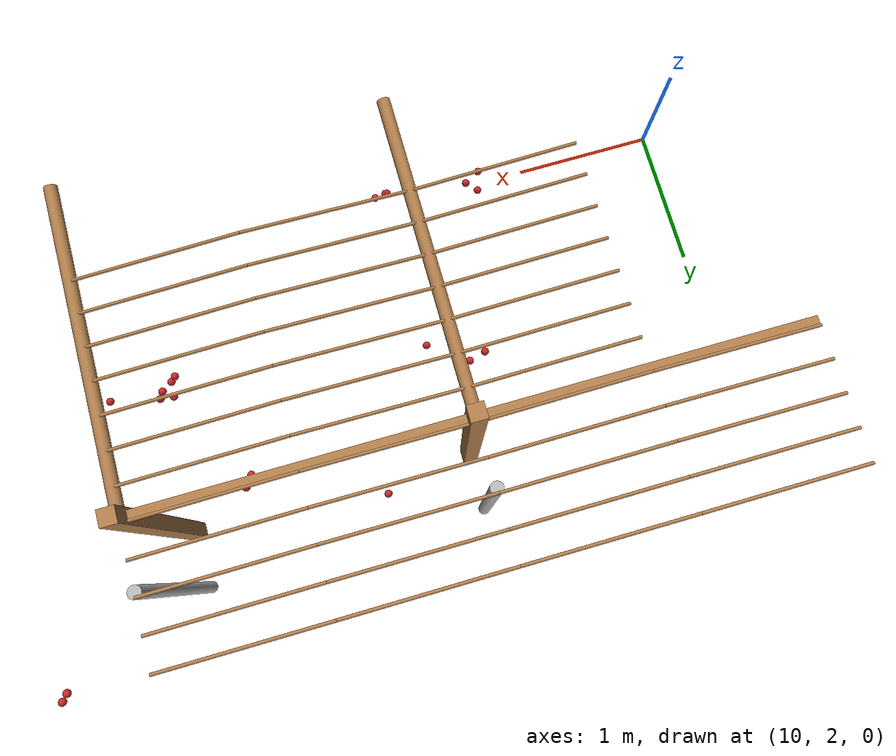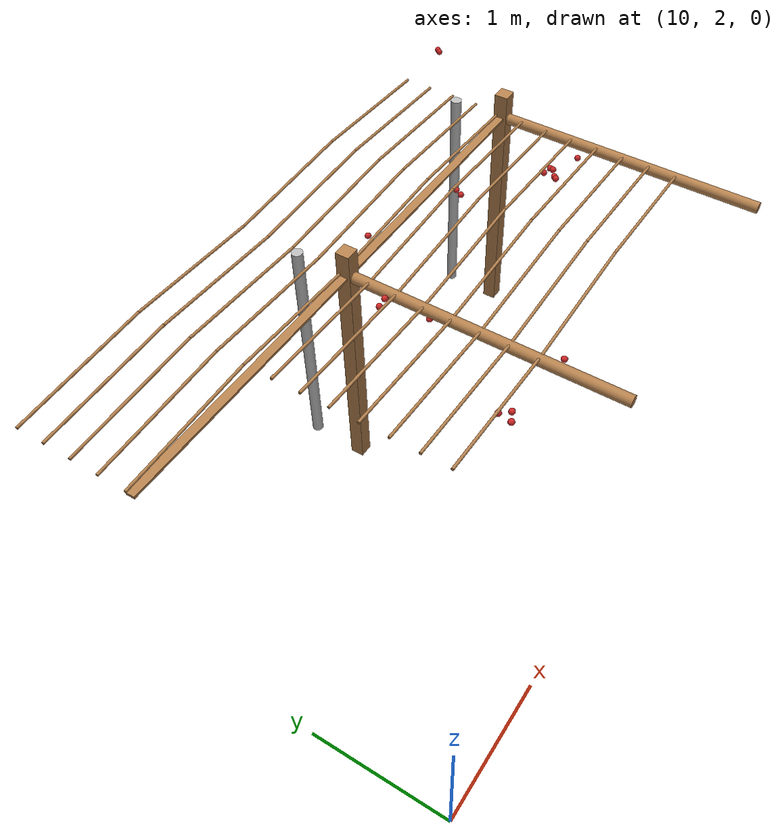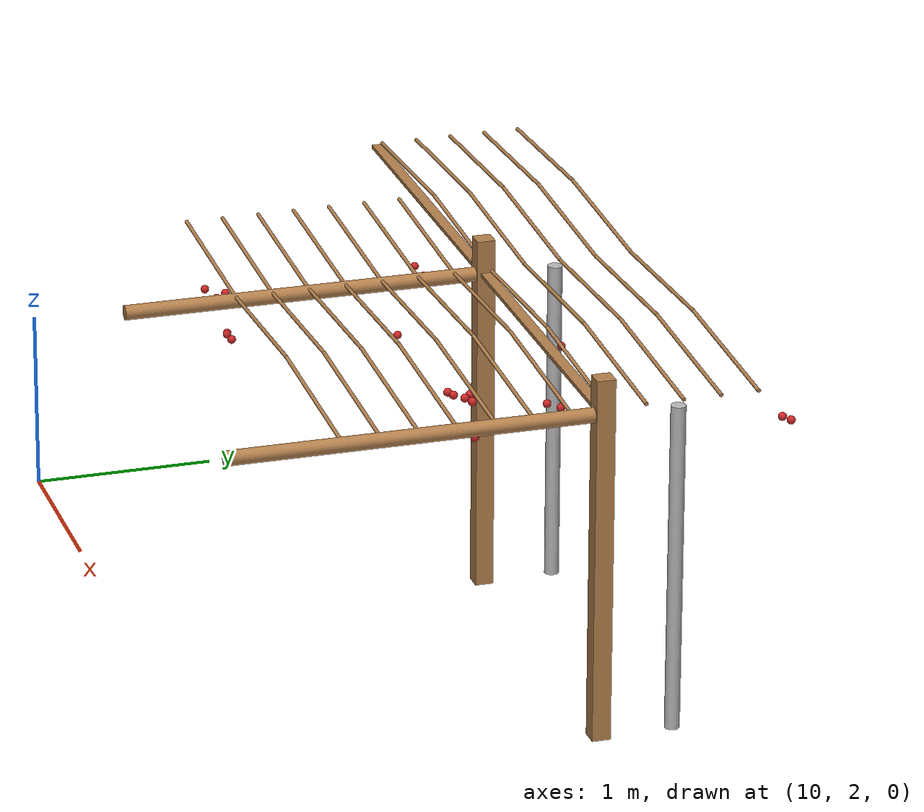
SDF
<sdf version="1.4">
 <model name="pergola">
  <include><name>post_68</name><pose>12.0 4.0 0 0 0 0</pose><uri>model://post</uri></include>
  <include><name>post_79</name><pose>14.0 4.0 0 0 0 0</pose><uri>model://post</uri></include>
  <link name="beam_57">
   <pose>11.0 4.0 1.81 0 0 0</pose>
   <collision name="collision"><geometry><box><size>2.0 0.06 0.02</size></box></geometry></collision>
   <visual name="visual">
    <geometry><box><size>2.0 0.06 0.02</size></box></geometry>
    <material><script><name>Gazebo/Wood</name></script></material>
   </visual>
   <inertial>
    <mass>5</mass>
    <inertia>
     <ixx>0.0016666666666666668</ixx>
     <ixy>0.0</ixy>
     <ixz>0.0</ixz>
     <iyy>1.6681666666666664</iyy>
     <iyz>0.0</iyz>
     <izz>1.6668333333333332</izz>
    </inertia>
   </inertial>
  </link>
  <link name="beam_68">
   <pose>13.0 4.0 1.81 0 0 0</pose>
   <collision name="collision"><geometry><box><size>2.0 0.06 0.02</size></box></geometry></collision>
   <visual name="visual">
    <geometry><box><size>2.0 0.06 0.02</size></box></geometry>
    <material><script><name>Gazebo/Wood</name></script></material>
   </visual>
   <inertial>
    <mass>5</mass>
    <inertia>
     <ixx>0.0016666666666666668</ixx>
     <ixy>0.0</ixy>
     <ixz>0.0</ixz>
     <iyy>1.6681666666666664</iyy>
     <iyz>0.0</iyz>
     <izz>1.6668333333333332</izz>
    </inertia>
   </inertial>
  </link>
  <include><name>tree_62</name><pose>12.0 4.4 0 0 0 0</pose><uri>model://tree_trunk</uri></include>
  <include><name>tree_72</name><pose>14.0 4.4 0 0 0 0</pose><uri>model://tree_trunk</uri></include>
  <link name="baseBranch_61">
   <pose>12.0 3.0 1.8 1.5707963267948966 0 0</pose>
   <collision name="collision">
    <geometry><cylinder><radius>0.04</radius><length>1.94</length></cylinder></geometry>
   </collision>
   <visual name="visual">
    <geometry><cylinder><radius>0.04</radius><length>1.94</length></cylinder></geometry>
    <material><script><name>Gazebo/WoodFloor</name></script></material>
   </visual>
   <inertial>
    <mass>10</mass>
    <inertia>
     <ixx>3.140333333333333</ixx>
     <ixy>0.0</ixy>
     <ixz>0.0</ixz>
     <iyy>3.140333333333333</iyy>
     <iyz>0.0</iyz>
     <izz>0.008</izz>
    </inertia>
   </inertial>
  </link>
  <link name="baseBranch_71">
   <pose>14.0 3.0 1.8 1.5707963267948966 0 0</pose>
   <collision name="collision">
    <geometry><cylinder><radius>0.04</radius><length>1.94</length></cylinder></geometry>
   </collision>
   <visual name="visual">
    <geometry><cylinder><radius>0.04</radius><length>1.94</length></cylinder></geometry>
    <material><script><name>Gazebo/WoodFloor</name></script></material>
   </visual>
   <inertial>
    <mass>10</mass>
    <inertia>
     <ixx>3.140333333333333</ixx>
     <ixy>0.0</ixy>
     <ixz>0.0</ixz>
     <iyy>3.140333333333333</iyy>
     <iyz>0.0</iyz>
     <izz>0.008</izz>
    </inertia>
   </inertial>
  </link>
  <link name="vine_1027">
   <pose>11.5 2.63 1.85 0 -1.5208379310729538 0</pose>
   <collision name="collision">
    <geometry><cylinder><radius>0.01</radius><length>1.0012492197250393</length></cylinder></geometry>
   </collision>
   <visual name="visual">
    <geometry><cylinder><radius>0.01</radius><length>1.0012492197250393</length></cylinder></geometry>
    <material><script><name>Gazebo/WoodFloor</name></script></material>
   </visual>
   <inertial>
    <mass>5</mass>
    <inertia>
     <ixx>0.41783333333333345</ixx>
     <ixy>0.0</ixy>
     <ixz>0.0</ixz>
     <iyy>0.41783333333333345</iyy>
     <iyz>0.0</iyz>
     <izz>0.00025</izz>
    </inertia>
   </inertial>
  </link>
  <link name="vine_1029">
   <pose>11.5 2.83 1.85 0 -1.5208379310729538 0</pose>
   <collision name="collision">
    <geometry><cylinder><radius>0.01</radius><length>1.0012492197250393</length></cylinder></geometry>
   </collision>
   <visual name="visual">
    <geometry><cylinder><radius>0.01</radius><length>1.0012492197250393</length></cylinder></geometry>
    <material><script><name>Gazebo/WoodFloor</name></script></material>
   </visual>
   <inertial>
    <mass>5</mass>
    <inertia>
     <ixx>0.41783333333333345</ixx>
     <ixy>0.0</ixy>
     <ixz>0.0</ixz>
     <iyy>0.41783333333333345</iyy>
     <iyz>0.0</iyz>
     <izz>0.00025</izz>
    </inertia>
   </inertial>
  </link>
  <link name="vine_1031">
   <pose>11.5 3.03 1.85 0 -1.5208379310729538 0</pose>
   <collision name="collision">
    <geometry><cylinder><radius>0.01</radius><length>1.0012492197250393</length></cylinder></geometry>
   </collision>
   <visual name="visual">
    <geometry><cylinder><radius>0.01</radius><length>1.0012492197250393</length></cylinder></geometry>
    <material><script><name>Gazebo/WoodFloor</name></script></material>
   </visual>
   <inertial>
    <mass>5</mass>
    <inertia>
     <ixx>0.41783333333333345</ixx>
     <ixy>0.0</ixy>
     <ixz>0.0</ixz>
     <iyy>0.41783333333333345</iyy>
     <iyz>0.0</iyz>
     <izz>0.00025</izz>
    </inertia>
   </inertial>
  </link>
  <link name="vine_1033">
   <pose>11.5 3.23 1.85 0 -1.5208379310729538 0</pose>
   <collision name="collision">
    <geometry><cylinder><radius>0.01</radius><length>1.0012492197250393</length></cylinder></geometry>
   </collision>
   <visual name="visual">
    <geometry><cylinder><radius>0.01</radius><length>1.0012492197250393</length></cylinder></geometry>
    <material><script><name>Gazebo/WoodFloor</name></script></material>
   </visual>
   <inertial>
    <mass>5</mass>
    <inertia>
     <ixx>0.41783333333333345</ixx>
     <ixy>0.0</ixy>
     <ixz>0.0</ixz>
     <iyy>0.41783333333333345</iyy>
     <iyz>0.0</iyz>
     <izz>0.00025</izz>
    </inertia>
   </inertial>
  </link>
  <link name="vine_1035">
   <pose>11.5 3.43 1.85 0 -1.5208379310729538 0</pose>
   <collision name="collision">
    <geometry><cylinder><radius>0.01</radius><length>1.0012492197250393</length></cylinder></geometry>
   </collision>
   <visual name="visual">
    <geometry><cylinder><radius>0.01</radius><length>1.0012492197250393</length></cylinder></geometry>
    <material><script><name>Gazebo/WoodFloor</name></script></material>
   </visual>
   <inertial>
    <mass>5</mass>
    <inertia>
     <ixx>0.41783333333333345</ixx>
     <ixy>0.0</ixy>
     <ixz>0.0</ixz>
     <iyy>0.41783333333333345</iyy>
     <iyz>0.0</iyz>
     <izz>0.00025</izz>
    </inertia>
   </inertial>
  </link>
  <link name="vine_1037">
   <pose>11.5 3.63 1.85 0 -1.5208379310729538 0</pose>
   <collision name="collision">
    <geometry><cylinder><radius>0.01</radius><length>1.0012492197250393</length></cylinder></geometry>
   </collision>
   <visual name="visual">
    <geometry><cylinder><radius>0.01</radius><length>1.0012492197250393</length></cylinder></geometry>
    <material><script><name>Gazebo/WoodFloor</name></script></material>
   </visual>
   <inertial>
    <mass>5</mass>
    <inertia>
     <ixx>0.41783333333333345</ixx>
     <ixy>0.0</ixy>
     <ixz>0.0</ixz>
     <iyy>0.41783333333333345</iyy>
     <iyz>0.0</iyz>
     <izz>0.00025</izz>
    </inertia>
   </inertial>
  </link>
  <link name="vine_1039">
   <pose>11.5 3.83 1.85 0 -1.5208379310729538 0</pose>
   <collision name="collision">
    <geometry><cylinder><radius>0.01</radius><length>1.0012492197250393</length></cylinder></geometry>
   </collision>
   <visual name="visual">
    <geometry><cylinder><radius>0.01</radius><length>1.0012492197250393</length></cylinder></geometry>
    <material><script><name>Gazebo/WoodFloor</name></script></material>
   </visual>
   <inertial>
    <mass>5</mass>
    <inertia>
     <ixx>0.41783333333333345</ixx>
     <ixy>0.0</ixy>
     <ixz>0.0</ixz>
     <iyy>0.41783333333333345</iyy>
     <iyz>0.0</iyz>
     <izz>0.00025</izz>
    </inertia>
   </inertial>
  </link>
  <link name="vine_1040">
   <pose>10.5 4.03 1.85 0 1.5208379310729538 0</pose>
   <collision name="collision">
    <geometry><cylinder><radius>0.01</radius><length>1.0012492197250393</length></cylinder></geometry>
   </collision>
   <visual name="visual">
    <geometry><cylinder><radius>0.01</radius><length>1.0012492197250393</length></cylinder></geometry>
    <material><script><name>Gazebo/WoodFloor</name></script></material>
   </visual>
   <inertial>
    <mass>5</mass>
    <inertia>
     <ixx>0.41783333333333345</ixx>
     <ixy>0.0</ixy>
     <ixz>0.0</ixz>
     <iyy>0.41783333333333345</iyy>
     <iyz>0.0</iyz>
     <izz>0.00025</izz>
    </inertia>
   </inertial>
  </link>
  <link name="vine_1041">
   <pose>11.5 4.03 1.85 0 -1.5208379310729538 0</pose>
   <collision name="collision">
    <geometry><cylinder><radius>0.01</radius><length>1.0012492197250393</length></cylinder></geometry>
   </collision>
   <visual name="visual">
    <geometry><cylinder><radius>0.01</radius><length>1.0012492197250393</length></cylinder></geometry>
    <material><script><name>Gazebo/WoodFloor</name></script></material>
   </visual>
   <inertial>
    <mass>5</mass>
    <inertia>
     <ixx>0.41783333333333345</ixx>
     <ixy>0.0</ixy>
     <ixz>0.0</ixz>
     <iyy>0.41783333333333345</iyy>
     <iyz>0.0</iyz>
     <izz>0.00025</izz>
    </inertia>
   </inertial>
  </link>
  <link name="vine_1042">
   <pose>10.5 4.23 1.85 0 1.5208379310729538 0</pose>
   <collision name="collision">
    <geometry><cylinder><radius>0.01</radius><length>1.0012492197250393</length></cylinder></geometry>
   </collision>
   <visual name="visual">
    <geometry><cylinder><radius>0.01</radius><length>1.0012492197250393</length></cylinder></geometry>
    <material><script><name>Gazebo/WoodFloor</name></script></material>
   </visual>
   <inertial>
    <mass>5</mass>
    <inertia>
     <ixx>0.41783333333333345</ixx>
     <ixy>0.0</ixy>
     <ixz>0.0</ixz>
     <iyy>0.41783333333333345</iyy>
     <iyz>0.0</iyz>
     <izz>0.00025</izz>
    </inertia>
   </inertial>
  </link>
  <link name="vine_1043">
   <pose>11.5 4.23 1.85 0 -1.5208379310729538 0</pose>
   <collision name="collision">
    <geometry><cylinder><radius>0.01</radius><length>1.0012492197250393</length></cylinder></geometry>
   </collision>
   <visual name="visual">
    <geometry><cylinder><radius>0.01</radius><length>1.0012492197250393</length></cylinder></geometry>
    <material><script><name>Gazebo/WoodFloor</name></script></material>
   </visual>
   <inertial>
    <mass>5</mass>
    <inertia>
     <ixx>0.41783333333333345</ixx>
     <ixy>0.0</ixy>
     <ixz>0.0</ixz>
     <iyy>0.41783333333333345</iyy>
     <iyz>0.0</iyz>
     <izz>0.00025</izz>
    </inertia>
   </inertial>
  </link>
  <link name="vine_1044">
   <pose>10.5 4.430000000000001 1.85 0 1.5208379310729538 0</pose>
   <collision name="collision">
    <geometry><cylinder><radius>0.01</radius><length>1.0012492197250393</length></cylinder></geometry>
   </collision>
   <visual name="visual">
    <geometry><cylinder><radius>0.01</radius><length>1.0012492197250393</length></cylinder></geometry>
    <material><script><name>Gazebo/WoodFloor</name></script></material>
   </visual>
   <inertial>
    <mass>5</mass>
    <inertia>
     <ixx>0.41783333333333345</ixx>
     <ixy>0.0</ixy>
     <ixz>0.0</ixz>
     <iyy>0.41783333333333345</iyy>
     <iyz>0.0</iyz>
     <izz>0.00025</izz>
    </inertia>
   </inertial>
  </link>
  <link name="vine_1045">
   <pose>11.5 4.430000000000001 1.85 0 -1.5208379310729538 0</pose>
   <collision name="collision">
    <geometry><cylinder><radius>0.01</radius><length>1.0012492197250393</length></cylinder></geometry>
   </collision>
   <visual name="visual">
    <geometry><cylinder><radius>0.01</radius><length>1.0012492197250393</length></cylinder></geometry>
    <material><script><name>Gazebo/WoodFloor</name></script></material>
   </visual>
   <inertial>
    <mass>5</mass>
    <inertia>
     <ixx>0.41783333333333345</ixx>
     <ixy>0.0</ixy>
     <ixz>0.0</ixz>
     <iyy>0.41783333333333345</iyy>
     <iyz>0.0</iyz>
     <izz>0.00025</izz>
    </inertia>
   </inertial>
  </link>
  <link name="vine_1046">
   <pose>10.5 4.630000000000001 1.85 0 1.5208379310729538 0</pose>
   <collision name="collision">
    <geometry><cylinder><radius>0.01</radius><length>1.0012492197250393</length></cylinder></geometry>
   </collision>
   <visual name="visual">
    <geometry><cylinder><radius>0.01</radius><length>1.0012492197250393</length></cylinder></geometry>
    <material><script><name>Gazebo/WoodFloor</name></script></material>
   </visual>
   <inertial>
    <mass>5</mass>
    <inertia>
     <ixx>0.41783333333333345</ixx>
     <ixy>0.0</ixy>
     <ixz>0.0</ixz>
     <iyy>0.41783333333333345</iyy>
     <iyz>0.0</iyz>
     <izz>0.00025</izz>
    </inertia>
   </inertial>
  </link>
  <link name="vine_1047">
   <pose>11.5 4.630000000000001 1.85 0 -1.5208379310729538 0</pose>
   <collision name="collision">
    <geometry><cylinder><radius>0.01</radius><length>1.0012492197250393</length></cylinder></geometry>
   </collision>
   <visual name="visual">
    <geometry><cylinder><radius>0.01</radius><length>1.0012492197250393</length></cylinder></geometry>
    <material><script><name>Gazebo/WoodFloor</name></script></material>
   </visual>
   <inertial>
    <mass>5</mass>
    <inertia>
     <ixx>0.41783333333333345</ixx>
     <ixy>0.0</ixy>
     <ixz>0.0</ixz>
     <iyy>0.41783333333333345</iyy>
     <iyz>0.0</iyz>
     <izz>0.00025</izz>
    </inertia>
   </inertial>
  </link>
  <link name="vine_1048">
   <pose>10.5 4.830000000000001 1.85 0 1.5208379310729538 0</pose>
   <collision name="collision">
    <geometry><cylinder><radius>0.01</radius><length>1.0012492197250393</length></cylinder></geometry>
   </collision>
   <visual name="visual">
    <geometry><cylinder><radius>0.01</radius><length>1.0012492197250393</length></cylinder></geometry>
    <material><script><name>Gazebo/WoodFloor</name></script></material>
   </visual>
   <inertial>
    <mass>5</mass>
    <inertia>
     <ixx>0.41783333333333345</ixx>
     <ixy>0.0</ixy>
     <ixz>0.0</ixz>
     <iyy>0.41783333333333345</iyy>
     <iyz>0.0</iyz>
     <izz>0.00025</izz>
    </inertia>
   </inertial>
  </link>
  <link name="vine_1049">
   <pose>11.5 4.830000000000001 1.85 0 -1.5208379310729538 0</pose>
   <collision name="collision">
    <geometry><cylinder><radius>0.01</radius><length>1.0012492197250393</length></cylinder></geometry>
   </collision>
   <visual name="visual">
    <geometry><cylinder><radius>0.01</radius><length>1.0012492197250393</length></cylinder></geometry>
    <material><script><name>Gazebo/WoodFloor</name></script></material>
   </visual>
   <inertial>
    <mass>5</mass>
    <inertia>
     <ixx>0.41783333333333345</ixx>
     <ixy>0.0</ixy>
     <ixz>0.0</ixz>
     <iyy>0.41783333333333345</iyy>
     <iyz>0.0</iyz>
     <izz>0.00025</izz>
    </inertia>
   </inertial>
  </link>
  <link name="vine_1226">
   <pose>12.5 2.63 1.85 0 1.5208379310729538 0</pose>
   <collision name="collision">
    <geometry><cylinder><radius>0.01</radius><length>1.0012492197250393</length></cylinder></geometry>
   </collision>
   <visual name="visual">
    <geometry><cylinder><radius>0.01</radius><length>1.0012492197250393</length></cylinder></geometry>
    <material><script><name>Gazebo/WoodFloor</name></script></material>
   </visual>
   <inertial>
    <mass>5</mass>
    <inertia>
     <ixx>0.41783333333333345</ixx>
     <ixy>0.0</ixy>
     <ixz>0.0</ixz>
     <iyy>0.41783333333333345</iyy>
     <iyz>0.0</iyz>
     <izz>0.00025</izz>
    </inertia>
   </inertial>
  </link>
  <link name="vine_1227">
   <pose>13.5 2.63 1.85 0 -1.5208379310729538 0</pose>
   <collision name="collision">
    <geometry><cylinder><radius>0.01</radius><length>1.0012492197250393</length></cylinder></geometry>
   </collision>
   <visual name="visual">
    <geometry><cylinder><radius>0.01</radius><length>1.0012492197250393</length></cylinder></geometry>
    <material><script><name>Gazebo/WoodFloor</name></script></material>
   </visual>
   <inertial>
    <mass>5</mass>
    <inertia>
     <ixx>0.41783333333333345</ixx>
     <ixy>0.0</ixy>
     <ixz>0.0</ixz>
     <iyy>0.41783333333333345</iyy>
     <iyz>0.0</iyz>
     <izz>0.00025</izz>
    </inertia>
   </inertial>
  </link>
  <link name="vine_1228">
   <pose>12.5 2.83 1.85 0 1.5208379310729538 0</pose>
   <collision name="collision">
    <geometry><cylinder><radius>0.01</radius><length>1.0012492197250393</length></cylinder></geometry>
   </collision>
   <visual name="visual">
    <geometry><cylinder><radius>0.01</radius><length>1.0012492197250393</length></cylinder></geometry>
    <material><script><name>Gazebo/WoodFloor</name></script></material>
   </visual>
   <inertial>
    <mass>5</mass>
    <inertia>
     <ixx>0.41783333333333345</ixx>
     <ixy>0.0</ixy>
     <ixz>0.0</ixz>
     <iyy>0.41783333333333345</iyy>
     <iyz>0.0</iyz>
     <izz>0.00025</izz>
    </inertia>
   </inertial>
  </link>
  <link name="vine_1229">
   <pose>13.5 2.83 1.85 0 -1.5208379310729538 0</pose>
   <collision name="collision">
    <geometry><cylinder><radius>0.01</radius><length>1.0012492197250393</length></cylinder></geometry>
   </collision>
   <visual name="visual">
    <geometry><cylinder><radius>0.01</radius><length>1.0012492197250393</length></cylinder></geometry>
    <material><script><name>Gazebo/WoodFloor</name></script></material>
   </visual>
   <inertial>
    <mass>5</mass>
    <inertia>
     <ixx>0.41783333333333345</ixx>
     <ixy>0.0</ixy>
     <ixz>0.0</ixz>
     <iyy>0.41783333333333345</iyy>
     <iyz>0.0</iyz>
     <izz>0.00025</izz>
    </inertia>
   </inertial>
  </link>
  <link name="vine_1230">
   <pose>12.5 3.03 1.85 0 1.5208379310729538 0</pose>
   <collision name="collision">
    <geometry><cylinder><radius>0.01</radius><length>1.0012492197250393</length></cylinder></geometry>
   </collision>
   <visual name="visual">
    <geometry><cylinder><radius>0.01</radius><length>1.0012492197250393</length></cylinder></geometry>
    <material><script><name>Gazebo/WoodFloor</name></script></material>
   </visual>
   <inertial>
    <mass>5</mass>
    <inertia>
     <ixx>0.41783333333333345</ixx>
     <ixy>0.0</ixy>
     <ixz>0.0</ixz>
     <iyy>0.41783333333333345</iyy>
     <iyz>0.0</iyz>
     <izz>0.00025</izz>
    </inertia>
   </inertial>
  </link>
  <link name="vine_1231">
   <pose>13.5 3.03 1.85 0 -1.5208379310729538 0</pose>
   <collision name="collision">
    <geometry><cylinder><radius>0.01</radius><length>1.0012492197250393</length></cylinder></geometry>
   </collision>
   <visual name="visual">
    <geometry><cylinder><radius>0.01</radius><length>1.0012492197250393</length></cylinder></geometry>
    <material><script><name>Gazebo/WoodFloor</name></script></material>
   </visual>
   <inertial>
    <mass>5</mass>
    <inertia>
     <ixx>0.41783333333333345</ixx>
     <ixy>0.0</ixy>
     <ixz>0.0</ixz>
     <iyy>0.41783333333333345</iyy>
     <iyz>0.0</iyz>
     <izz>0.00025</izz>
    </inertia>
   </inertial>
  </link>
  <link name="vine_1232">
   <pose>12.5 3.23 1.85 0 1.5208379310729538 0</pose>
   <collision name="collision">
    <geometry><cylinder><radius>0.01</radius><length>1.0012492197250393</length></cylinder></geometry>
   </collision>
   <visual name="visual">
    <geometry><cylinder><radius>0.01</radius><length>1.0012492197250393</length></cylinder></geometry>
    <material><script><name>Gazebo/WoodFloor</name></script></material>
   </visual>
   <inertial>
    <mass>5</mass>
    <inertia>
     <ixx>0.41783333333333345</ixx>
     <ixy>0.0</ixy>
     <ixz>0.0</ixz>
     <iyy>0.41783333333333345</iyy>
     <iyz>0.0</iyz>
     <izz>0.00025</izz>
    </inertia>
   </inertial>
  </link>
  <link name="vine_1233">
   <pose>13.5 3.23 1.85 0 -1.5208379310729538 0</pose>
   <collision name="collision">
    <geometry><cylinder><radius>0.01</radius><length>1.0012492197250393</length></cylinder></geometry>
   </collision>
   <visual name="visual">
    <geometry><cylinder><radius>0.01</radius><length>1.0012492197250393</length></cylinder></geometry>
    <material><script><name>Gazebo/WoodFloor</name></script></material>
   </visual>
   <inertial>
    <mass>5</mass>
    <inertia>
     <ixx>0.41783333333333345</ixx>
     <ixy>0.0</ixy>
     <ixz>0.0</ixz>
     <iyy>0.41783333333333345</iyy>
     <iyz>0.0</iyz>
     <izz>0.00025</izz>
    </inertia>
   </inertial>
  </link>
  <link name="vine_1234">
   <pose>12.5 3.43 1.85 0 1.5208379310729538 0</pose>
   <collision name="collision">
    <geometry><cylinder><radius>0.01</radius><length>1.0012492197250393</length></cylinder></geometry>
   </collision>
   <visual name="visual">
    <geometry><cylinder><radius>0.01</radius><length>1.0012492197250393</length></cylinder></geometry>
    <material><script><name>Gazebo/WoodFloor</name></script></material>
   </visual>
   <inertial>
    <mass>5</mass>
    <inertia>
     <ixx>0.41783333333333345</ixx>
     <ixy>0.0</ixy>
     <ixz>0.0</ixz>
     <iyy>0.41783333333333345</iyy>
     <iyz>0.0</iyz>
     <izz>0.00025</izz>
    </inertia>
   </inertial>
  </link>
  <link name="vine_1235">
   <pose>13.5 3.43 1.85 0 -1.5208379310729538 0</pose>
   <collision name="collision">
    <geometry><cylinder><radius>0.01</radius><length>1.0012492197250393</length></cylinder></geometry>
   </collision>
   <visual name="visual">
    <geometry><cylinder><radius>0.01</radius><length>1.0012492197250393</length></cylinder></geometry>
    <material><script><name>Gazebo/WoodFloor</name></script></material>
   </visual>
   <inertial>
    <mass>5</mass>
    <inertia>
     <ixx>0.41783333333333345</ixx>
     <ixy>0.0</ixy>
     <ixz>0.0</ixz>
     <iyy>0.41783333333333345</iyy>
     <iyz>0.0</iyz>
     <izz>0.00025</izz>
    </inertia>
   </inertial>
  </link>
  <link name="vine_1236">
   <pose>12.5 3.63 1.85 0 1.5208379310729538 0</pose>
   <collision name="collision">
    <geometry><cylinder><radius>0.01</radius><length>1.0012492197250393</length></cylinder></geometry>
   </collision>
   <visual name="visual">
    <geometry><cylinder><radius>0.01</radius><length>1.0012492197250393</length></cylinder></geometry>
    <material><script><name>Gazebo/WoodFloor</name></script></material>
   </visual>
   <inertial>
    <mass>5</mass>
    <inertia>
     <ixx>0.41783333333333345</ixx>
     <ixy>0.0</ixy>
     <ixz>0.0</ixz>
     <iyy>0.41783333333333345</iyy>
     <iyz>0.0</iyz>
     <izz>0.00025</izz>
    </inertia>
   </inertial>
  </link>
  <link name="vine_1237">
   <pose>13.5 3.63 1.85 0 -1.5208379310729538 0</pose>
   <collision name="collision">
    <geometry><cylinder><radius>0.01</radius><length>1.0012492197250393</length></cylinder></geometry>
   </collision>
   <visual name="visual">
    <geometry><cylinder><radius>0.01</radius><length>1.0012492197250393</length></cylinder></geometry>
    <material><script><name>Gazebo/WoodFloor</name></script></material>
   </visual>
   <inertial>
    <mass>5</mass>
    <inertia>
     <ixx>0.41783333333333345</ixx>
     <ixy>0.0</ixy>
     <ixz>0.0</ixz>
     <iyy>0.41783333333333345</iyy>
     <iyz>0.0</iyz>
     <izz>0.00025</izz>
    </inertia>
   </inertial>
  </link>
  <link name="vine_1238">
   <pose>12.5 3.83 1.85 0 1.5208379310729538 0</pose>
   <collision name="collision">
    <geometry><cylinder><radius>0.01</radius><length>1.0012492197250393</length></cylinder></geometry>
   </collision>
   <visual name="visual">
    <geometry><cylinder><radius>0.01</radius><length>1.0012492197250393</length></cylinder></geometry>
    <material><script><name>Gazebo/WoodFloor</name></script></material>
   </visual>
   <inertial>
    <mass>5</mass>
    <inertia>
     <ixx>0.41783333333333345</ixx>
     <ixy>0.0</ixy>
     <ixz>0.0</ixz>
     <iyy>0.41783333333333345</iyy>
     <iyz>0.0</iyz>
     <izz>0.00025</izz>
    </inertia>
   </inertial>
  </link>
  <link name="vine_1239">
   <pose>13.5 3.83 1.85 0 -1.5208379310729538 0</pose>
   <collision name="collision">
    <geometry><cylinder><radius>0.01</radius><length>1.0012492197250393</length></cylinder></geometry>
   </collision>
   <visual name="visual">
    <geometry><cylinder><radius>0.01</radius><length>1.0012492197250393</length></cylinder></geometry>
    <material><script><name>Gazebo/WoodFloor</name></script></material>
   </visual>
   <inertial>
    <mass>5</mass>
    <inertia>
     <ixx>0.41783333333333345</ixx>
     <ixy>0.0</ixy>
     <ixz>0.0</ixz>
     <iyy>0.41783333333333345</iyy>
     <iyz>0.0</iyz>
     <izz>0.00025</izz>
    </inertia>
   </inertial>
  </link>
  <link name="vine_1240">
   <pose>12.5 4.03 1.85 0 1.5208379310729538 0</pose>
   <collision name="collision">
    <geometry><cylinder><radius>0.01</radius><length>1.0012492197250393</length></cylinder></geometry>
   </collision>
   <visual name="visual">
    <geometry><cylinder><radius>0.01</radius><length>1.0012492197250393</length></cylinder></geometry>
    <material><script><name>Gazebo/WoodFloor</name></script></material>
   </visual>
   <inertial>
    <mass>5</mass>
    <inertia>
     <ixx>0.41783333333333345</ixx>
     <ixy>0.0</ixy>
     <ixz>0.0</ixz>
     <iyy>0.41783333333333345</iyy>
     <iyz>0.0</iyz>
     <izz>0.00025</izz>
    </inertia>
   </inertial>
  </link>
  <link name="vine_1241">
   <pose>13.5 4.03 1.85 0 -1.5208379310729538 0</pose>
   <collision name="collision">
    <geometry><cylinder><radius>0.01</radius><length>1.0012492197250393</length></cylinder></geometry>
   </collision>
   <visual name="visual">
    <geometry><cylinder><radius>0.01</radius><length>1.0012492197250393</length></cylinder></geometry>
    <material><script><name>Gazebo/WoodFloor</name></script></material>
   </visual>
   <inertial>
    <mass>5</mass>
    <inertia>
     <ixx>0.41783333333333345</ixx>
     <ixy>0.0</ixy>
     <ixz>0.0</ixz>
     <iyy>0.41783333333333345</iyy>
     <iyz>0.0</iyz>
     <izz>0.00025</izz>
    </inertia>
   </inertial>
  </link>
  <link name="vine_1242">
   <pose>12.5 4.23 1.85 0 1.5208379310729538 0</pose>
   <collision name="collision">
    <geometry><cylinder><radius>0.01</radius><length>1.0012492197250393</length></cylinder></geometry>
   </collision>
   <visual name="visual">
    <geometry><cylinder><radius>0.01</radius><length>1.0012492197250393</length></cylinder></geometry>
    <material><script><name>Gazebo/WoodFloor</name></script></material>
   </visual>
   <inertial>
    <mass>5</mass>
    <inertia>
     <ixx>0.41783333333333345</ixx>
     <ixy>0.0</ixy>
     <ixz>0.0</ixz>
     <iyy>0.41783333333333345</iyy>
     <iyz>0.0</iyz>
     <izz>0.00025</izz>
    </inertia>
   </inertial>
  </link>
  <link name="vine_1243">
   <pose>13.5 4.23 1.85 0 -1.5208379310729538 0</pose>
   <collision name="collision">
    <geometry><cylinder><radius>0.01</radius><length>1.0012492197250393</length></cylinder></geometry>
   </collision>
   <visual name="visual">
    <geometry><cylinder><radius>0.01</radius><length>1.0012492197250393</length></cylinder></geometry>
    <material><script><name>Gazebo/WoodFloor</name></script></material>
   </visual>
   <inertial>
    <mass>5</mass>
    <inertia>
     <ixx>0.41783333333333345</ixx>
     <ixy>0.0</ixy>
     <ixz>0.0</ixz>
     <iyy>0.41783333333333345</iyy>
     <iyz>0.0</iyz>
     <izz>0.00025</izz>
    </inertia>
   </inertial>
  </link>
  <link name="vine_1244">
   <pose>12.5 4.430000000000001 1.85 0 1.5208379310729538 0</pose>
   <collision name="collision">
    <geometry><cylinder><radius>0.01</radius><length>1.0012492197250393</length></cylinder></geometry>
   </collision>
   <visual name="visual">
    <geometry><cylinder><radius>0.01</radius><length>1.0012492197250393</length></cylinder></geometry>
    <material><script><name>Gazebo/WoodFloor</name></script></material>
   </visual>
   <inertial>
    <mass>5</mass>
    <inertia>
     <ixx>0.41783333333333345</ixx>
     <ixy>0.0</ixy>
     <ixz>0.0</ixz>
     <iyy>0.41783333333333345</iyy>
     <iyz>0.0</iyz>
     <izz>0.00025</izz>
    </inertia>
   </inertial>
  </link>
  <link name="vine_1245">
   <pose>13.5 4.430000000000001 1.85 0 -1.5208379310729538 0</pose>
   <collision name="collision">
    <geometry><cylinder><radius>0.01</radius><length>1.0012492197250393</length></cylinder></geometry>
   </collision>
   <visual name="visual">
    <geometry><cylinder><radius>0.01</radius><length>1.0012492197250393</length></cylinder></geometry>
    <material><script><name>Gazebo/WoodFloor</name></script></material>
   </visual>
   <inertial>
    <mass>5</mass>
    <inertia>
     <ixx>0.41783333333333345</ixx>
     <ixy>0.0</ixy>
     <ixz>0.0</ixz>
     <iyy>0.41783333333333345</iyy>
     <iyz>0.0</iyz>
     <izz>0.00025</izz>
    </inertia>
   </inertial>
  </link>
  <link name="vine_1246">
   <pose>12.5 4.630000000000001 1.85 0 1.5208379310729538 0</pose>
   <collision name="collision">
    <geometry><cylinder><radius>0.01</radius><length>1.0012492197250393</length></cylinder></geometry>
   </collision>
   <visual name="visual">
    <geometry><cylinder><radius>0.01</radius><length>1.0012492197250393</length></cylinder></geometry>
    <material><script><name>Gazebo/WoodFloor</name></script></material>
   </visual>
   <inertial>
    <mass>5</mass>
    <inertia>
     <ixx>0.41783333333333345</ixx>
     <ixy>0.0</ixy>
     <ixz>0.0</ixz>
     <iyy>0.41783333333333345</iyy>
     <iyz>0.0</iyz>
     <izz>0.00025</izz>
    </inertia>
   </inertial>
  </link>
  <link name="vine_1247">
   <pose>13.5 4.630000000000001 1.85 0 -1.5208379310729538 0</pose>
   <collision name="collision">
    <geometry><cylinder><radius>0.01</radius><length>1.0012492197250393</length></cylinder></geometry>
   </collision>
   <visual name="visual">
    <geometry><cylinder><radius>0.01</radius><length>1.0012492197250393</length></cylinder></geometry>
    <material><script><name>Gazebo/WoodFloor</name></script></material>
   </visual>
   <inertial>
    <mass>5</mass>
    <inertia>
     <ixx>0.41783333333333345</ixx>
     <ixy>0.0</ixy>
     <ixz>0.0</ixz>
     <iyy>0.41783333333333345</iyy>
     <iyz>0.0</iyz>
     <izz>0.00025</izz>
    </inertia>
   </inertial>
  </link>
  <link name="vine_1248">
   <pose>12.5 4.830000000000001 1.85 0 1.5208379310729538 0</pose>
   <collision name="collision">
    <geometry><cylinder><radius>0.01</radius><length>1.0012492197250393</length></cylinder></geometry>
   </collision>
   <visual name="visual">
    <geometry><cylinder><radius>0.01</radius><length>1.0012492197250393</length></cylinder></geometry>
    <material><script><name>Gazebo/WoodFloor</name></script></material>
   </visual>
   <inertial>
    <mass>5</mass>
    <inertia>
     <ixx>0.41783333333333345</ixx>
     <ixy>0.0</ixy>
     <ixz>0.0</ixz>
     <iyy>0.41783333333333345</iyy>
     <iyz>0.0</iyz>
     <izz>0.00025</izz>
    </inertia>
   </inertial>
  </link>
  <link name="vine_1249">
   <pose>13.5 4.830000000000001 1.85 0 -1.5208379310729538 0</pose>
   <collision name="collision">
    <geometry><cylinder><radius>0.01</radius><length>1.0012492197250393</length></cylinder></geometry>
   </collision>
   <visual name="visual">
    <geometry><cylinder><radius>0.01</radius><length>1.0012492197250393</length></cylinder></geometry>
    <material><script><name>Gazebo/WoodFloor</name></script></material>
   </visual>
   <inertial>
    <mass>5</mass>
    <inertia>
     <ixx>0.41783333333333345</ixx>
     <ixy>0.0</ixy>
     <ixz>0.0</ixz>
     <iyy>0.41783333333333345</iyy>
     <iyz>0.0</iyz>
     <izz>0.00025</izz>
    </inertia>
   </inertial>
  </link>
  <link name="fruit_22">
   <pose>13.29765907230308 3.934949021240429 1.5793117055666812 0 0 0</pose>
   <collision name="fruit_collision_22"><geometry><sphere><radius>0.022</radius></sphere></geometry></collision>
   <visual name="visual">
    <geometry><sphere><radius>0.022</radius></sphere></geometry>
    <material><script><name>Gazebo/Red</name></script></material>
   </visual>
   <inertial>
    <mass>0.05</mass>
    <inertia>
     <ixx>9.679999999999999e-06</ixx>
     <ixy>0.0</ixy>
     <ixz>0.0</ixz>
     <iyy>9.679999999999999e-06</iyy>
     <iyz>0.0</iyz>
     <izz>9.679999999999999e-06</izz>
    </inertia>
   </inertial>
   <sensor name="fruit_contact_22" type="contact">
    <contact><collision>fruit_collision_22</collision></contact>
   </sensor>
  </link>
  <link name="fruit_57">
   <pose>13.93809074026917 3.3449385094945767 1.7271414980248712 0 0 0</pose>
   <collision name="fruit_collision_57"><geometry><sphere><radius>0.022</radius></sphere></geometry></collision>
   <visual name="visual">
    <geometry><sphere><radius>0.022</radius></sphere></geometry>
    <material><script><name>Gazebo/Red</name></script></material>
   </visual>
   <inertial>
    <mass>0.05</mass>
    <inertia>
     <ixx>9.679999999999999e-06</ixx>
     <ixy>0.0</ixy>
     <ixz>0.0</ixz>
     <iyy>9.679999999999999e-06</iyy>
     <iyz>0.0</iyz>
     <izz>9.679999999999999e-06</izz>
    </inertia>
   </inertial>
   <sensor name="fruit_contact_57" type="contact">
    <contact><collision>fruit_collision_57</collision></contact>
   </sensor>
  </link>
  <link name="fruit_85">
   <pose>14.415129122262737 4.802303284928833 1.857927671923407 0 0 0</pose>
   <collision name="fruit_collision_85"><geometry><sphere><radius>0.022</radius></sphere></geometry></collision>
   <visual name="visual">
    <geometry><sphere><radius>0.022</radius></sphere></geometry>
    <material><script><name>Gazebo/Red</name></script></material>
   </visual>
   <inertial>
    <mass>0.05</mass>
    <inertia>
     <ixx>9.679999999999999e-06</ixx>
     <ixy>0.0</ixy>
     <ixz>0.0</ixz>
     <iyy>9.679999999999999e-06</iyy>
     <iyz>0.0</iyz>
     <izz>9.679999999999999e-06</izz>
    </inertia>
   </inertial>
   <sensor name="fruit_contact_85" type="contact">
    <contact><collision>fruit_collision_85</collision></contact>
   </sensor>
  </link>
  <link name="fruit_110">
   <pose>11.571905825981185 2.578127493068003 1.7065964822843822 0 0 0</pose>
   <collision name="fruit_collision_110"><geometry><sphere><radius>0.022</radius></sphere></geometry></collision>
   <visual name="visual">
    <geometry><sphere><radius>0.022</radius></sphere></geometry>
    <material><script><name>Gazebo/Red</name></script></material>
   </visual>
   <inertial>
    <mass>0.05</mass>
    <inertia>
     <ixx>9.679999999999999e-06</ixx>
     <ixy>0.0</ixy>
     <ixz>0.0</ixz>
     <iyy>9.679999999999999e-06</iyy>
     <iyz>0.0</iyz>
     <izz>9.679999999999999e-06</izz>
    </inertia>
   </inertial>
   <sensor name="fruit_contact_110" type="contact">
    <contact><collision>fruit_collision_110</collision></contact>
   </sensor>
  </link>
  <link name="fruit_235">
   <pose>12.142229091726819 3.479574378608004 1.5610467306807836 0 0 0</pose>
   <collision name="fruit_collision_235"><geometry><sphere><radius>0.022</radius></sphere></geometry></collision>
   <visual name="visual">
    <geometry><sphere><radius>0.022</radius></sphere></geometry>
    <material><script><name>Gazebo/Red</name></script></material>
   </visual>
   <inertial>
    <mass>0.05</mass>
    <inertia>
     <ixx>9.679999999999999e-06</ixx>
     <ixy>0.0</ixy>
     <ixz>0.0</ixz>
     <iyy>9.679999999999999e-06</iyy>
     <iyz>0.0</iyz>
     <izz>9.679999999999999e-06</izz>
    </inertia>
   </inertial>
   <sensor name="fruit_contact_235" type="contact">
    <contact><collision>fruit_collision_235</collision></contact>
   </sensor>
  </link>
  <link name="fruit_262">
   <pose>13.541649344421442 3.32559292432791 1.8143996929820851 0 0 0</pose>
   <collision name="fruit_collision_262"><geometry><sphere><radius>0.022</radius></sphere></geometry></collision>
   <visual name="visual">
    <geometry><sphere><radius>0.022</radius></sphere></geometry>
    <material><script><name>Gazebo/Red</name></script></material>
   </visual>
   <inertial>
    <mass>0.05</mass>
    <inertia>
     <ixx>9.679999999999999e-06</ixx>
     <ixy>0.0</ixy>
     <ixz>0.0</ixz>
     <iyy>9.679999999999999e-06</iyy>
     <iyz>0.0</iyz>
     <izz>9.679999999999999e-06</izz>
    </inertia>
   </inertial>
   <sensor name="fruit_contact_262" type="contact">
    <contact><collision>fruit_collision_262</collision></contact>
   </sensor>
  </link>
  <link name="fruit_299">
   <pose>11.851141567755159 3.6609408152910796 1.8216671787073873 0 0 0</pose>
   <collision name="fruit_collision_299"><geometry><sphere><radius>0.022</radius></sphere></geometry></collision>
   <visual name="visual">
    <geometry><sphere><radius>0.022</radius></sphere></geometry>
    <material><script><name>Gazebo/Red</name></script></material>
   </visual>
   <inertial>
    <mass>0.05</mass>
    <inertia>
     <ixx>9.679999999999999e-06</ixx>
     <ixy>0.0</ixy>
     <ixz>0.0</ixz>
     <iyy>9.679999999999999e-06</iyy>
     <iyz>0.0</iyz>
     <izz>9.679999999999999e-06</izz>
    </inertia>
   </inertial>
   <sensor name="fruit_contact_299" type="contact">
    <contact><collision>fruit_collision_299</collision></contact>
   </sensor>
  </link>
  <link name="fruit_333">
   <pose>12.580003147061559 4.248871011461705 1.5799625570766977 0 0 0</pose>
   <collision name="fruit_collision_333"><geometry><sphere><radius>0.022</radius></sphere></geometry></collision>
   <visual name="visual">
    <geometry><sphere><radius>0.022</radius></sphere></geometry>
    <material><script><name>Gazebo/Red</name></script></material>
   </visual>
   <inertial>
    <mass>0.05</mass>
    <inertia>
     <ixx>9.679999999999999e-06</ixx>
     <ixy>0.0</ixy>
     <ixz>0.0</ixz>
     <iyy>9.679999999999999e-06</iyy>
     <iyz>0.0</iyz>
     <izz>9.679999999999999e-06</izz>
    </inertia>
   </inertial>
   <sensor name="fruit_contact_333" type="contact">
    <contact><collision>fruit_collision_333</collision></contact>
   </sensor>
  </link>
  <link name="fruit_373">
   <pose>11.65810508185983 2.6199910460596993 1.6846104645764368 0 0 0</pose>
   <collision name="fruit_collision_373"><geometry><sphere><radius>0.022</radius></sphere></geometry></collision>
   <visual name="visual">
    <geometry><sphere><radius>0.022</radius></sphere></geometry>
    <material><script><name>Gazebo/Red</name></script></material>
   </visual>
   <inertial>
    <mass>0.05</mass>
    <inertia>
     <ixx>9.679999999999999e-06</ixx>
     <ixy>0.0</ixy>
     <ixz>0.0</ixz>
     <iyy>9.679999999999999e-06</iyy>
     <iyz>0.0</iyz>
     <izz>9.679999999999999e-06</izz>
    </inertia>
   </inertial>
   <sensor name="fruit_contact_373" type="contact">
    <contact><collision>fruit_collision_373</collision></contact>
   </sensor>
  </link>
  <link name="fruit_601">
   <pose>13.648430299088899 3.422385377635277 1.7935370130546404 0 0 0</pose>
   <collision name="fruit_collision_601"><geometry><sphere><radius>0.022</radius></sphere></geometry></collision>
   <visual name="visual">
    <geometry><sphere><radius>0.022</radius></sphere></geometry>
    <material><script><name>Gazebo/Red</name></script></material>
   </visual>
   <inertial>
    <mass>0.05</mass>
    <inertia>
     <ixx>9.679999999999999e-06</ixx>
     <ixy>0.0</ixy>
     <ixz>0.0</ixz>
     <iyy>9.679999999999999e-06</iyy>
     <iyz>0.0</iyz>
     <izz>9.679999999999999e-06</izz>
    </inertia>
   </inertial>
   <sensor name="fruit_contact_601" type="contact">
    <contact><collision>fruit_collision_601</collision></contact>
   </sensor>
  </link>
  <link name="fruit_662">
   <pose>11.945279897644165 3.684185679032526 1.8000279124656515 0 0 0</pose>
   <collision name="fruit_collision_662"><geometry><sphere><radius>0.022</radius></sphere></geometry></collision>
   <visual name="visual">
    <geometry><sphere><radius>0.022</radius></sphere></geometry>
    <material><script><name>Gazebo/Red</name></script></material>
   </visual>
   <inertial>
    <mass>0.05</mass>
    <inertia>
     <ixx>9.679999999999999e-06</ixx>
     <ixy>0.0</ixy>
     <ixz>0.0</ixz>
     <iyy>9.679999999999999e-06</iyy>
     <iyz>0.0</iyz>
     <izz>9.679999999999999e-06</izz>
    </inertia>
   </inertial>
   <sensor name="fruit_contact_662" type="contact">
    <contact><collision>fruit_collision_662</collision></contact>
   </sensor>
  </link>
  <link name="fruit_686">
   <pose>12.133715554874334 2.5479431883211423 1.6717546011467797 0 0 0</pose>
   <collision name="fruit_collision_686"><geometry><sphere><radius>0.022</radius></sphere></geometry></collision>
   <visual name="visual">
    <geometry><sphere><radius>0.022</radius></sphere></geometry>
    <material><script><name>Gazebo/Red</name></script></material>
   </visual>
   <inertial>
    <mass>0.05</mass>
    <inertia>
     <ixx>9.679999999999999e-06</ixx>
     <ixy>0.0</ixy>
     <ixz>0.0</ixz>
     <iyy>9.679999999999999e-06</iyy>
     <iyz>0.0</iyz>
     <izz>9.679999999999999e-06</izz>
    </inertia>
   </inertial>
   <sensor name="fruit_contact_686" type="contact">
    <contact><collision>fruit_collision_686</collision></contact>
   </sensor>
  </link>
  <link name="fruit_688">
   <pose>13.626405685913472 3.3896451259618203 1.8086078499992813 0 0 0</pose>
   <collision name="fruit_collision_688"><geometry><sphere><radius>0.022</radius></sphere></geometry></collision>
   <visual name="visual">
    <geometry><sphere><radius>0.022</radius></sphere></geometry>
    <material><script><name>Gazebo/Red</name></script></material>
   </visual>
   <inertial>
    <mass>0.05</mass>
    <inertia>
     <ixx>9.679999999999999e-06</ixx>
     <ixy>0.0</ixy>
     <ixz>0.0</ixz>
     <iyy>9.679999999999999e-06</iyy>
     <iyz>0.0</iyz>
     <izz>9.679999999999999e-06</izz>
    </inertia>
   </inertial>
   <sensor name="fruit_contact_688" type="contact">
    <contact><collision>fruit_collision_688</collision></contact>
   </sensor>
  </link>
  <link name="fruit_721">
   <pose>13.341692560913021 3.9960165707829205 1.5679666992590415 0 0 0</pose>
   <collision name="fruit_collision_721"><geometry><sphere><radius>0.022</radius></sphere></geometry></collision>
   <visual name="visual">
    <geometry><sphere><radius>0.022</radius></sphere></geometry>
    <material><script><name>Gazebo/Red</name></script></material>
   </visual>
   <inertial>
    <mass>0.05</mass>
    <inertia>
     <ixx>9.679999999999999e-06</ixx>
     <ixy>0.0</ixy>
     <ixz>0.0</ixz>
     <iyy>9.679999999999999e-06</iyy>
     <iyz>0.0</iyz>
     <izz>9.679999999999999e-06</izz>
    </inertia>
   </inertial>
   <sensor name="fruit_contact_721" type="contact">
    <contact><collision>fruit_collision_721</collision></contact>
   </sensor>
  </link>
  <link name="fruit_725">
   <pose>13.572760889530732 3.4324819182521713 1.8009659027966045 0 0 0</pose>
   <collision name="fruit_collision_725"><geometry><sphere><radius>0.022</radius></sphere></geometry></collision>
   <visual name="visual">
    <geometry><sphere><radius>0.022</radius></sphere></geometry>
    <material><script><name>Gazebo/Red</name></script></material>
   </visual>
   <inertial>
    <mass>0.05</mass>
    <inertia>
     <ixx>9.679999999999999e-06</ixx>
     <ixy>0.0</ixy>
     <ixz>0.0</ixz>
     <iyy>9.679999999999999e-06</iyy>
     <iyz>0.0</iyz>
     <izz>9.679999999999999e-06</izz>
    </inertia>
   </inertial>
   <sensor name="fruit_contact_725" type="contact">
    <contact><collision>fruit_collision_725</collision></contact>
   </sensor>
  </link>
  <link name="fruit_780">
   <pose>11.60421958547223 2.681632128225841 1.6856099831909144 0 0 0</pose>
   <collision name="fruit_collision_780"><geometry><sphere><radius>0.022</radius></sphere></geometry></collision>
   <visual name="visual">
    <geometry><sphere><radius>0.022</radius></sphere></geometry>
    <material><script><name>Gazebo/Red</name></script></material>
   </visual>
   <inertial>
    <mass>0.05</mass>
    <inertia>
     <ixx>9.679999999999999e-06</ixx>
     <ixy>0.0</ixy>
     <ixz>0.0</ixz>
     <iyy>9.679999999999999e-06</iyy>
     <iyz>0.0</iyz>
     <izz>9.679999999999999e-06</izz>
    </inertia>
   </inertial>
   <sensor name="fruit_contact_780" type="contact">
    <contact><collision>fruit_collision_780</collision></contact>
   </sensor>
  </link>
  <link name="fruit_883">
   <pose>13.566971016778252 3.3483748895770398 1.806228321955291 0 0 0</pose>
   <collision name="fruit_collision_883"><geometry><sphere><radius>0.022</radius></sphere></geometry></collision>
   <visual name="visual">
    <geometry><sphere><radius>0.022</radius></sphere></geometry>
    <material><script><name>Gazebo/Red</name></script></material>
   </visual>
   <inertial>
    <mass>0.05</mass>
    <inertia>
     <ixx>9.679999999999999e-06</ixx>
     <ixy>0.0</ixy>
     <ixz>0.0</ixz>
     <iyy>9.679999999999999e-06</iyy>
     <iyz>0.0</iyz>
     <izz>9.679999999999999e-06</izz>
    </inertia>
   </inertial>
   <sensor name="fruit_contact_883" type="contact">
    <contact><collision>fruit_collision_883</collision></contact>
   </sensor>
  </link>
  <link name="fruit_898">
   <pose>12.124843909610048 2.5508613772312763 1.6744509839995902 0 0 0</pose>
   <collision name="fruit_collision_898"><geometry><sphere><radius>0.022</radius></sphere></geometry></collision>
   <visual name="visual">
    <geometry><sphere><radius>0.022</radius></sphere></geometry>
    <material><script><name>Gazebo/Red</name></script></material>
   </visual>
   <inertial>
    <mass>0.05</mass>
    <inertia>
     <ixx>9.679999999999999e-06</ixx>
     <ixy>0.0</ixy>
     <ixz>0.0</ixz>
     <iyy>9.679999999999999e-06</iyy>
     <iyz>0.0</iyz>
     <izz>9.679999999999999e-06</izz>
    </inertia>
   </inertial>
   <sensor name="fruit_contact_898" type="contact">
    <contact><collision>fruit_collision_898</collision></contact>
   </sensor>
  </link>
  <link name="fruit_910">
   <pose>14.448860255402385 4.8369517827901 1.8485483208092726 0 0 0</pose>
   <collision name="fruit_collision_910"><geometry><sphere><radius>0.022</radius></sphere></geometry></collision>
   <visual name="visual">
    <geometry><sphere><radius>0.022</radius></sphere></geometry>
    <material><script><name>Gazebo/Red</name></script></material>
   </visual>
   <inertial>
    <mass>0.05</mass>
    <inertia>
     <ixx>9.679999999999999e-06</ixx>
     <ixy>0.0</ixy>
     <ixz>0.0</ixz>
     <iyy>9.679999999999999e-06</iyy>
     <iyz>0.0</iyz>
     <izz>9.679999999999999e-06</izz>
    </inertia>
   </inertial>
   <sensor name="fruit_contact_910" type="contact">
    <contact><collision>fruit_collision_910</collision></contact>
   </sensor>
  </link>
  <link name="fruit_995">
   <pose>12.19853179973113 2.5562817290233277 1.6655053530088997 0 0 0</pose>
   <collision name="fruit_collision_995"><geometry><sphere><radius>0.022</radius></sphere></geometry></collision>
   <visual name="visual">
    <geometry><sphere><radius>0.022</radius></sphere></geometry>
    <material><script><name>Gazebo/Red</name></script></material>
   </visual>
   <inertial>
    <mass>0.05</mass>
    <inertia>
     <ixx>9.679999999999999e-06</ixx>
     <ixy>0.0</ixy>
     <ixz>0.0</ixz>
     <iyy>9.679999999999999e-06</iyy>
     <iyz>0.0</iyz>
     <izz>9.679999999999999e-06</izz>
    </inertia>
   </inertial>
   <sensor name="fruit_contact_995" type="contact">
    <contact><collision>fruit_collision_995</collision></contact>
   </sensor>
  </link>
 </model>
</sdf>
